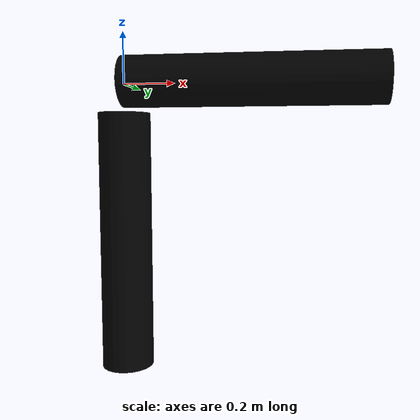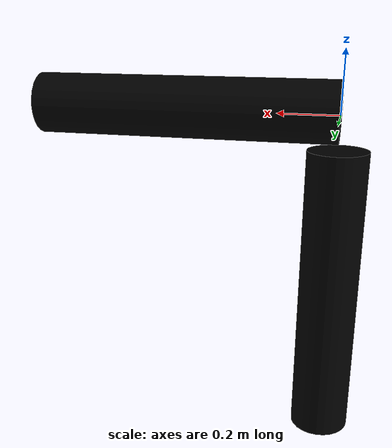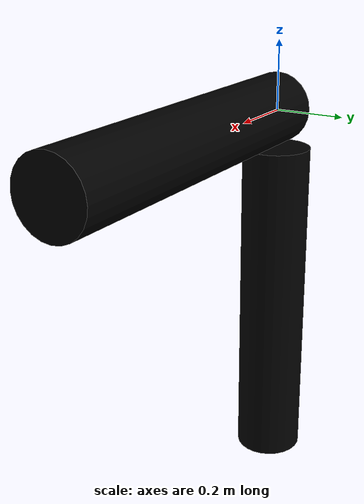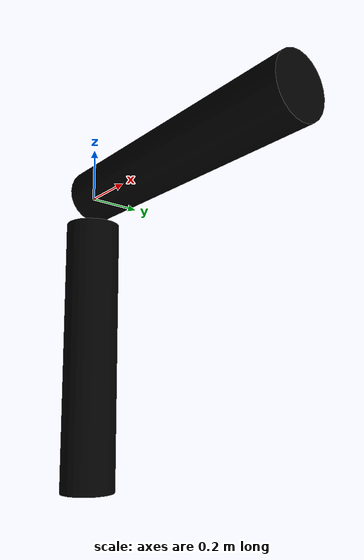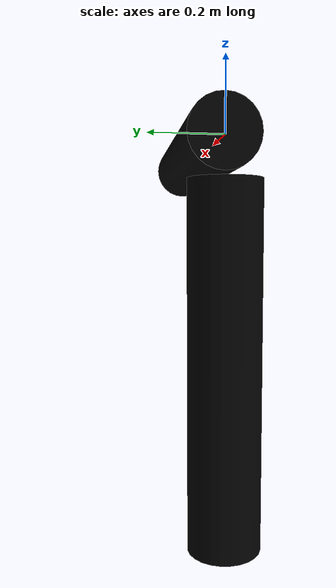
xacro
<?xml version="1.0"?>
<!-- Added a comment -->
<robot xmlns:xacro="http://www.ros.org/wiki/xacro" name="5DoF_2D">

<xacro:property name="length" value="1.0" />
<xacro:property name="radius" value="0.1" />
<xacro:property name="mass" value="10" />

<xacro:macro name="default_shape">
		<geometry>
		  <!--box size="${radius} ${length} ${radius}"/-->
		  <cylinder length="${length}" radius="${radius}"/>
		</geometry>
</xacro:macro>

<xacro:macro name="default_inertia">
	     <inertial>
		<mass value="${mass}" />
                <inertia ixx="${mass*length*length/3.0}" ixy="0.0" ixz="0.0"
                     iyy="0.0" iyz="0.0"
                     izz="${mass*length*length/3.0}" />
       	     </inertial>
</xacro:macro>

<material name="3">
	  <color rgba="0 0 0.8 1"/>
</material>
<material name="1">
	  <color rgba="0 0.8 0 1"/>
</material>
<material name="2">
	  <color rgba="0.8 0 0 1"/>
</material>
<material name="0">
	  <color rgba="0 0 0 1"/>
</material>

<material name="4">
    	<color rgba="1 1 1 1"/>
</material>

<xacro:macro name="default_link" params="n material">
       <link name = "link_${n}">
         <visual>
		<origin rpy="0 1.57 0" xyz="${length/2.0} 0 ${radius*2.0*n+radius/10.0}" />
		<xacro:default_shape />
		<material name="${material}"/>
	  </visual>
	  <collision>
		<xacro:default_shape />
	  </collision>
	  <xacro:default_inertia/>
	</link>
</xacro:macro>

<link name="base_link">
         <visual>
		<origin rpy="0 0 0" xyz="0 0 ${-length/2.0-radius-0.01}" />
		<xacro:default_shape />
		<material name="0"/>
	  </visual>
	  <collision>
		<xacro:default_shape />
	  </collision>
	  <xacro:default_inertia/>
</link>

<xacro:macro name="loop" params="steps">
	     <xacro:default_link n="${steps}" material="${steps}"/>
	     <xacro:if value="${steps-1 >  -1}">
	     	       <xacro:loop steps="${steps-1}"/>
	     </xacro:if>
</xacro:macro>

<xacro:loop steps="0"/>

<joint name="base_to_0_joint" type="continuous">
       <axis xyz="0 0 1"/>
       <limit effort="30.0" velocity="0.5"/>
       <dynamics damping="0.0" friction="0.0"/>
       <origin rpy="0 0 0" xyz="0 0 0"/>
       <parent link="base_link"/>
       <child link="link_0"/>
</joint>

<xacro:macro name="loop2" params="step maxsteps">
	     <joint name="${step}_to_${step+1}_joint" type="continuous">
       	     	    <axis xyz="0 0 1"/>
       		    <limit effort="30.0" velocity="0.5"/>
       		    <origin rpy="0 0 0" xyz="${length} 0 0"/>
       		    <parent link="link_${step}"/>
       		    <child link="link_${step+1}"/>
		    <dynamics damping="0.1" friction="0.1"/>
	     </joint>
	     <xacro:if value="${maxsteps > step+1}">
	     	       <xacro:loop2 step="${step+1}" maxsteps="${maxsteps}"/>
             </xacro:if>
</xacro:macro>

<!--xacro:loop2 step="0" maxsteps="4"/-->

  <transmission name="base_to_0_trans">
    <type>transmission_interface/SimpleTransmission</type>
    <actuator name="base_to_0_motor">
      <mechanicalReduction>1</mechanicalReduction>
    </actuator>
    <joint name="base_to_0_joint">
      <hardwareInterface>hardware_interface/PositionJointInterface</hardwareInterface>
    </joint>
  </transmission>

<xacro:macro name="loop3" params="step maxsteps">
  <transmission name="${step}_to_${step+1}_trans">
    <type>transmission_interface/SimpleTransmission</type>
    <actuator name="${step}_to_${step+1}_motor">
      <mechanicalReduction>1</mechanicalReduction>
    </actuator>
    <joint name="${step}_to_${step+1}_joint">
      <hardwareInterface>hardware_interface/PositionJointInterface</hardwareInterface>
    </joint>
  </transmission>
	     <xacro:if value="${maxsteps > step+1}">
	     	       <xacro:loop3 step="${step+1}" maxsteps="${maxsteps}"/>
	     </xacro:if>
</xacro:macro>

<!--xacro:loop3 step="0" maxsteps="4"/-->

<gazebo>
    <plugin name="gazebo_ros_control" filename="libgazebo_ros_control.so">
      <robotNamespace>/DoF5_2D</robotNamespace>
    </plugin>
</gazebo>

</robot>
